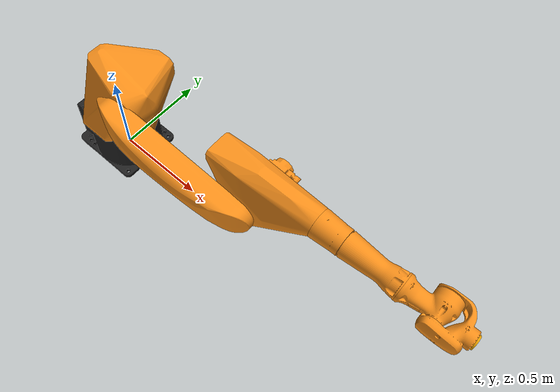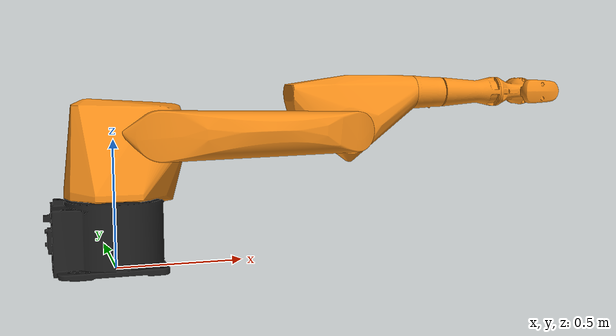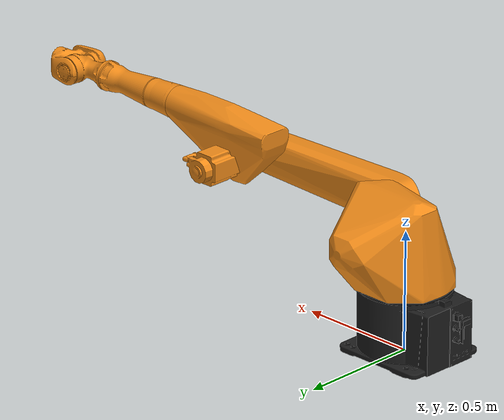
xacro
<?xml version="1.0" ?>
<robot name="kuka_kr20r1810" xmlns:xacro="http://wiki.ros.org/xacro">
  <xacro:include filename="$(find acroba_resources)/urdf/kr20r1810_macro.xacro"/>
  <xacro:kuka_kr20r1810 prefix=""/>

 <link name="world"/>
<joint name="world_joint" type="fixed">
	<parent link="world"/>
	<child link="base_link"/>
	<origin xyz="0.000000 0.000000 0.0" rpy="0.000000 0.000000 0.000000"/>
</joint>
</robot>

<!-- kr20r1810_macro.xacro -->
<robot xmlns:xacro="http://wiki.ros.org/xacro">
  <xacro:include filename="$(find acroba_resources)/urdf/common_constants.xacro"/>
  <xacro:include filename="$(find acroba_resources)/urdf/kuka_common_materials.xacro"/>
  <xacro:include filename="$(find acroba_resources)/urdf/kr20r1810_transmission.xacro"/>

  <xacro:property name="max_effort" value="0"/>
  	<xacro:macro name="kuka_kr20r1810" params="prefix">

  <xacro:macro name="default_inertia" params="mass">
    <inertial>
      <mass value="${mass}"/>
      <inertia ixx="${1.0/12}" ixy="0.0" ixz="0.0"
        iyy="${1.0/12}" iyz="0.0"
        izz="${1.0/12}"/>
    </inertial>
  </xacro:macro>

	<link name="${prefix}base_link">
    <visual>
      <origin xyz="0 0 0.0" rpy="0 0 0"/>
      <geometry>
          <mesh filename="package://acroba_resources/meshes/kuka_kr20/base.stl" scale="0.001 0.001 0.001"/>
      </geometry>
      <xacro:material_kuka_black />
    </visual>
    <collision>
      <origin xyz="0 0 0.0" rpy="0 0 0"/>
      <geometry>
         <mesh filename="package://acroba_resources/meshes/kuka_kr20/base_convex.stl" scale="0.001 0.001 0.001"/>
      </geometry>
    </collision>
    <xacro:default_inertia mass="1"/>
  </link>

<!--z coord from cad-->
  <link name="${prefix}link_1">
    <visual>
      <origin xyz="0 0 -0.250" rpy="0 0 0"/>
      <geometry>
          <mesh filename="package://acroba_resources/meshes/kuka_kr20/link1.stl" scale="0.001 0.001 0.001"/>
      </geometry>
      <xacro:material_kuka_orange />
    </visual>
    <collision>
      <origin xyz="0 0 -0.250" rpy="0 0 0"/>
      <geometry>
         <mesh filename="package://acroba_resources/meshes/kuka_kr20/link1_convex.stl" scale="0.001 0.001 0.001"/>
      </geometry>
    </collision>
    <xacro:default_inertia mass="1"/>
  </link>

<!--y coord from cad-->
  <link name="${prefix}link_2">
    <visual>
      <origin xyz="-0.16 0.0889 -0.52" rpy="0 0 0"/>
      <geometry>
          <mesh filename="package://acroba_resources/meshes/kuka_kr20/link2.stl" scale="0.001 0.001 0.001"/>
      </geometry>
      <xacro:material_kuka_orange />
    </visual>
    <collision>
      <origin xyz="-0.16 0.0889 -0.52" rpy="0 0 0"/>
      <geometry>
         <mesh filename="package://acroba_resources/meshes/kuka_kr20/link2_convex.stl" scale="0.001 0.001 0.001"/>
      </geometry>
    </collision>
    <xacro:default_inertia mass="1"/>
  </link>

<!-- y coord from cad-->
  <link name="${prefix}link_3">
    <visual>
      <origin xyz="-0.16 0.0978 -1.30" rpy="0 0 0"/>
      <geometry>
          <mesh filename="package://acroba_resources/meshes/kuka_kr20/link3.stl" scale="0.001 0.001 0.001"/>
      </geometry>
      <xacro:material_kuka_orange />
    </visual>
    <collision>
      <origin xyz="-0.16 0.0978 -1.30" rpy="0 0 0"/>
      <geometry>
         <mesh filename="package://acroba_resources/meshes/kuka_kr20/link3_convex.stl" scale="0.001 0.001 0.001"/>
      </geometry>
    </collision>
    <xacro:default_inertia mass="1"/>
  </link>

 <!-- y coord from cad-->
  <link name="${prefix}link_3_1">
    <visual>
      <origin xyz="-0.16 0.006 -1.30" rpy="0 0 0"/>
      <geometry>
          <mesh filename="package://acroba_resources/meshes/kuka_kr20/link3_1.stl" scale="0.001 0.001 0.001"/>
      </geometry>
      <xacro:material_kuka_orange />
    </visual>
    <collision>
      <origin xyz="-0.16 0.006 -1.30" rpy="0 0 0"/>
      <geometry>
         <mesh filename="package://acroba_resources/meshes/kuka_kr20/link3_1_convex.stl" scale="0.001 0.001 0.001"/>
      </geometry>
    </collision>
    <xacro:default_inertia mass="1"/>
  </link>

  <link name="${prefix}link_4">
    <visual>
      <origin xyz="-0.46 0 -1.45" rpy="0 0 0"/>
      <geometry>
          <mesh filename="package://acroba_resources/meshes/kuka_kr20/link4.stl" scale="0.001 0.001 0.001"/>
      </geometry>
      <xacro:material_kuka_orange />
    </visual>
    <collision>
      <origin xyz="-0.46 0 -1.45" rpy="0 0 0"/>
      <geometry>
         <mesh filename="package://acroba_resources/meshes/kuka_kr20/link4_convex.stl" scale="0.001 0.001 0.001"/>
      </geometry>
    </collision>
    <xacro:default_inertia mass="1"/>
  </link>

  <link name="${prefix}link_5">
    <visual>
      <origin xyz="-0.87 0 -1.45" rpy="0 0 0"/>
      <geometry>
          <mesh filename="package://acroba_resources/meshes/kuka_kr20/link5.stl" scale="0.001 0.001 0.001"/>
      </geometry>
      <xacro:material_kuka_orange />
    </visual>
    <collision>
      <origin xyz="-0.87 0 -1.45" rpy="0 0 0"/>
      <geometry>
         <mesh filename="package://acroba_resources/meshes/kuka_kr20/link5_convex.stl" scale="0.001 0.001 0.001"/>
      </geometry>
    </collision>
    <xacro:default_inertia mass="1"/>
  </link>

  <link name="${prefix}link_6">
    <visual>
      <origin xyz="-1.02 0 -1.45" rpy="0 0 0"/>
      <geometry>
          <mesh filename="package://acroba_resources/meshes/kuka_kr20/link6.stl" scale="0.001 0.001 0.001"/>
      </geometry>
      <xacro:material_kuka_orange />
    </visual>
    <collision>
      <origin xyz="-1.02 0 -1.45" rpy="0 0 0"/>
      <geometry>
         <mesh filename="package://acroba_resources/meshes/kuka_kr20/link6_convex.stl" scale="0.001 0.001 0.001"/>
      </geometry>
    </collision>
    <xacro:default_inertia mass="1"/>
  </link>

  <link name="${prefix}link_7">
    <visual>
      <origin xyz="-1.173 0 -1.45" rpy="0 0 0"/>
      <geometry>
          <mesh filename="package://acroba_resources/meshes/kuka_kr20/link_ee.stl" scale="0.001 0.001 0.001"/>
      </geometry>
      <xacro:material_kuka_orange />
    </visual>
    <collision>
      <origin xyz="-1.173 0 -1.45" rpy="0 0 0"/>
      <geometry>
         <mesh filename="package://acroba_resources/meshes/kuka_kr20/link_ee_convex.stl" scale="0.001 0.001 0.001"/>
      </geometry>
    </collision>
    <xacro:default_inertia mass="1"/>
  </link>

<!--JOINTS-->
<!-- the joint coordinate are the substaction between their coordinates (child-parent)*-1-->
		<joint name="${prefix}joint_a1" type="revolute">
		    <origin xyz="0 0 0.250" rpy="0 0 0"/>
		    <parent link="${prefix}base_link"/>
		    <child link="${prefix}link_1"/>
		    <axis xyz="0 0 -1"/>
        <dynamics damping="0.7"/>
		    <limit effort="${max_effort}" lower="${-DEG2RAD * 185}" upper="${DEG2RAD * 185}" velocity="${DEG2RAD * 200}"/>
		</joint>

    <joint name="${prefix}joint_a2" type="revolute">
      <origin xyz="0.16 -0.0889 0.27" rpy="0 1.57 0 "/>
      <parent link="${prefix}link_1"/>
      <child link="${prefix}link_2"/>
      <axis xyz="0 1 0"/>
      <dynamics damping="0.7"/>
      <limit effort="${max_effort}" lower="${-DEG2RAD * 185}" upper="${DEG2RAD * 65}" velocity="${DEG2RAD * 175}"/>
    </joint>

    <joint name="${prefix}joint_a3" type="revolute">
      <origin xyz="0 -0.009 0.78" rpy="0 -1.57 0"/>
      <parent link="${prefix}link_2"/>
      <child link="${prefix}link_3"/>
      <axis xyz="0 1 0"/>
      <dynamics damping="0.7"/>
      <limit effort="${max_effort}" lower="${-DEG2RAD * 138}" upper="${DEG2RAD * 175}" velocity="${DEG2RAD * 190}"/>
    </joint>

    <joint name="${prefix}joint_fixed_1" type="fixed">
      <origin xyz="0.0 0.091 0" rpy="0 0 0"/>
      <parent link="${prefix}link_3"/>
      <child link="${prefix}link_3_1"/>
    </joint>

    <joint name="${prefix}joint_a4" type="revolute">
      <origin xyz="0.3 0.0978 0.15" rpy="0 0 0"/>
      <parent link="${prefix}link_3"/>
      <child link="${prefix}link_4"/>
      <axis xyz="-1 0 0"/>
      <dynamics damping="0.7"/>
      <limit effort="${max_effort}" lower="${-DEG2RAD * 350}" upper="${DEG2RAD * 350}" velocity="${DEG2RAD * 430}"/>
    </joint>

    <joint name="${prefix}joint_fixed_2" type="fixed">
      <origin xyz="0.41 0 0" rpy="0 0 0"/>
      <parent link="${prefix}link_4"/>
      <child link="${prefix}link_5"/>
    </joint>

    <joint name="${prefix}joint_a5" type="revolute">
      <origin xyz="0.15 0 0" rpy="0 0 0"/>
      <parent link="${prefix}link_5"/>
      <child link="${prefix}link_6"/>
      <axis xyz="0 1 0"/>
      <dynamics damping="0.7"/>
      <limit effort="${max_effort}" lower="${-DEG2RAD * 120}" upper="${DEG2RAD * 120}" velocity="${DEG2RAD * 430}"/>
    </joint>

    <joint name="${prefix}joint_a6" type="revolute">
      <origin xyz="0.153 0 0" rpy="0 0 0"/>
      <parent link="${prefix}link_6"/>
      <child link="${prefix}link_7"/>
      <axis xyz="-1 0 0"/>
      <dynamics damping="0.7"/>
      <limit effort="${max_effort}" lower="${-DEG2RAD * 350}" upper="${DEG2RAD * 350}" velocity="${DEG2RAD * 630}"/>
    </joint>

     <!-- ROS base_link to UR 'Base' Coordinates transform -->
    <link name="${prefix}base"/>
    <joint name="${prefix}base_link-base_fixed_joint" type="fixed">
      <origin xyz="0 0 0" rpy="0 0 0"/>
      <parent link="${prefix}base_link"/>
      <child link="${prefix}base"/>
    </joint>

     <!-- ROS-Industrial 'flange' frame: attachment point for EEF models -->
    <link name="${prefix}flange" />
    <joint name="${prefix}joint_6-flange" type="fixed">
      <origin xyz="0 0 0" rpy="0 0 0" />
      <parent link="${prefix}link_7" />
      <child link="${prefix}flange" />
    </joint>

    <!-- ROS-Industrial 'tool0' frame: all-zeros tool frame -->
    <link name="${prefix}tool0" />
    <joint name="${prefix}link_6-tool0" type="fixed">
      <origin xyz="0 0 0.001" rpy="0 ${-pi/2} ${pi}" />
      <parent link="${prefix}link_7" />
      <child link="${prefix}tool0" />
    </joint>

    <!--Gazebo robot control-->

    <gazebo reference="${prefix}base_link">
      <mu1>0.2</mu1>
      <mu2>0.2</mu2>
      <material>Gazebo/Black</material>
    </gazebo>
    <!-- Link1 -->
    <gazebo reference="${prefix}link_1">
      <material>Gazebo/Orange</material>
    </gazebo>

    <gazebo reference="${prefix}link_2">
      <material>Gazebo/Orange</material>
    </gazebo>

    <!-- Link2 -->
    <gazebo reference="${prefix}link_3">
      <mu1>0.2</mu1>
      <mu2>0.2</mu2>
      <material>Gazebo/Orange</material>
    </gazebo>

    <!-- Link3 -->
    <gazebo reference="${prefix}link_3_1">
      <mu1>0.2</mu1>
      <mu2>0.2</mu2>
      <material>Gazebo/Orange</material>
    </gazebo>

    <gazebo reference="${prefix}link_4">
      <mu1>0.2</mu1>
      <mu2>0.2</mu2>
      <material>Gazebo/Orange</material>
    </gazebo>

    <gazebo reference="${prefix}link_5">
      <mu1>0.2</mu1>
      <mu2>0.2</mu2>
      <material>Gazebo/Orange</material>
    </gazebo>

     <gazebo reference="${prefix}link_6">
      <mu1>0.2</mu1>
      <mu2>0.2</mu2>
      <material>Gazebo/Orange</material>
    </gazebo>

    <xacro:kr20r1810_transmission prefix="${prefix}"/>

	</xacro:macro>
</robot>
